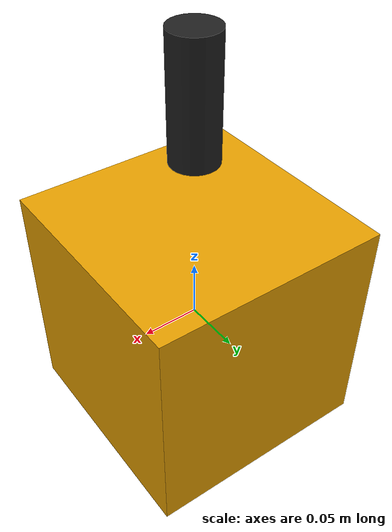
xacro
<?xml version="1.0"?>
    <robot name="cube" xmlns:xacro="http://www.ros.org/wiki/xacro">
        <xacro:arg name="use_camera" default="false" />
        <xacro:arg name="use_depth"  default="false" />
        <xacro:arg name="use_lidar"  default="false" />
        <xacro:property name="use_camera" value="$(arg use_camera)" />
        <xacro:property name="use_depth" value="$(arg use_depth)" />
        <xacro:property name="use_lidar" value="$(arg use_lidar)" />

        <link name="base_link">
            <visual>
                <origin xyz="0 0 0" rpy="0 0 0"/>
                <geometry>
                    <box size="0.2 0.2 0.2"/>
                </geometry>
            </visual>
            <collision>
                <origin xyz="0 0 0" rpy="0 0 0"/>
                <geometry>
                    <box size="0.2 0.2 0.2"/>
                </geometry>
            </collision>
            <inertial>
                <origin xyz="0 0 0" rpy="0 0 0"/>
                <mass value="100"/>
                <inertia
                ixx="1.0" ixy="0.0" ixz="0.0"
                iyy="1.0" iyz="0.0"
                izz="1.0"/>
            </inertial>
        </link>

        <link name="sensor_link">
                <inertial>
                <mass value="0.1"/>
                <origin xyz="0 0 0"/>
                <inertia ixx="0.01" ixy="0.0" ixz="0.0" iyy="0.01" iyz="0.0" izz="0.01"/>
            </inertial>
            <visual>
                <geometry>
                    <cylinder length="0.1" radius="0.02"/>
                </geometry>
                <origin xyz="0 0 0" rpy="0 0 0"/>
                <material name="black"/>
            </visual>
            <collision>
                <geometry>
                    <cylinder length="0.1" radius="0.02"/>
                </geometry>
            </collision>
        </link>

        <joint name="base_to_sensor" type="fixed">
            <parent link="base_link"/>
            <child link="sensor_link"/>
            <origin xyz="0 0 0.2" rpy="0.0 0.0 3.1415"/>
        </joint>

        <xacro:if value="${use_camera}">
            <gazebo reference="sensor_link">
                <sensor name="cube_camera" type="camera">
                    <always_on>1</always_on>
                    <update_rate>30</update_rate>
                    <visualize>1</visualize>
                    <pose>0 0.0175 0.5125 0 -0 0</pose>
                    <topic>/cube_camera/image_raw</topic>
                    <camera name="camera">
                        <horizontal_fov>1.21126</horizontal_fov>
                        <image>
                            <width>640</width>
                            <height>480</height>
                            <format>RGB_INT8</format>
                        </image>
                        <clip>
                            <near>0.1</near>
                            <far>100</far>
                        </clip>
                        <noise>
                            <type>gaussian</type>
                            <mean>0</mean>
                            <stddev>0.007</stddev>
                        </noise>
                    </camera>
                </sensor>
            </gazebo>
        </xacro:if>

        <xacro:if value="${use_depth}">
            <gazebo reference="base_link">
                <xacro:include filename="$(find realsense2_description)/urdf/_d435.urdf.xacro"/>
                <xacro:sensor_d435 parent="base_link" use_nominal_extrinsics="true" add_plug="false" use_mesh="true">
                    <origin xyz="0 0 0.5" rpy="0 0 0"/>
                </xacro:sensor_d435>

                <sensor name='d435_depth' type='depth_camera'>
                    <ignition_frame_id>camera_link</ignition_frame_id>
                    <always_on>1</always_on>
                    <update_rate>90</update_rate>
                    <visualize>1</visualize>
                    <topic>/cube_depth/image_raw</topic>
                    <pose>0 0.0175 0.0 0 -0 0</pose>
                    <camera name='d435'>
                        <ignition_frame_id>camera_link</ignition_frame_id>
                        <horizontal_fov>1.48702</horizontal_fov>
                        <image>
                            <width>1280</width>
                            <height>720</height>
                        </image>
                        <clip>
                            <near>0.1</near>
                            <far>100</far>
                        </clip>
                        <noise>
                            <type>gaussian</type>
                            <mean>0</mean>
                            <stddev>0.1</stddev>
                        </noise>
                    </camera>
                </sensor>
            </gazebo>
        </xacro:if>

        <xacro:if value="${use_lidar}">
            <gazebo reference="sensor_link">
                <sensor name="gpu_lidar" type="gpu_lidar">
                    <pose>0 0 0.2 0 0 0</pose>
                    <topic>lidar</topic>
                    <update_rate>10</update_rate>
                    <ray>
                        <scan>
                            <horizontal>
                                <samples>640</samples>
                                <resolution>1</resolution>
                                <min_angle>-1.396263</min_angle>
                                <max_angle>1.396263</max_angle>
                            </horizontal>
                            <vertical>
                                <samples>16</samples>
                                <resolution>1</resolution>
                                <min_angle>-0.261799</min_angle>
                                <max_angle>0.261799</max_angle>
                            </vertical>
                        </scan>
                        <range>
                            <min>0.1</min>
                            <max>10.0</max>
                            <resolution>0.01</resolution>
                        </range>
                    </ray>
                    <always_on>1</always_on>
                    <visualize>true</visualize>
                    <gz_frame_id>lidar_link</gz_frame_id>
                </sensor>
            </gazebo>
        </xacro:if>

        <xacro:if value="${use_camera or use_depth or use_lidar}"  >
            <gazebo>
                <plugin filename="libignition-gazebo-sensors-system.so"
                name="ignition::gazebo::systems::Sensors">
                    <ignition_frame_id>camera_link</ignition_frame_id>
                    <render_engine>ogre</render_engine>
                </plugin>
            </gazebo>
        </xacro:if>
</robot>
